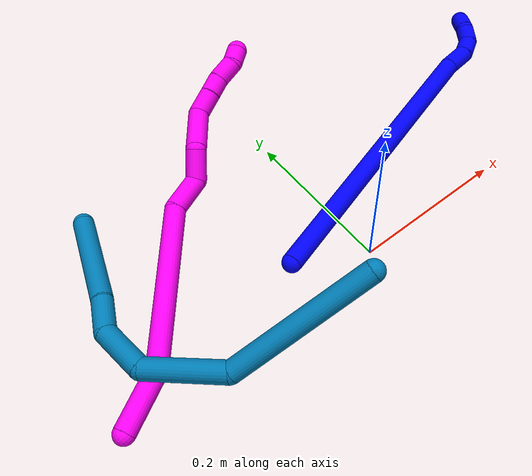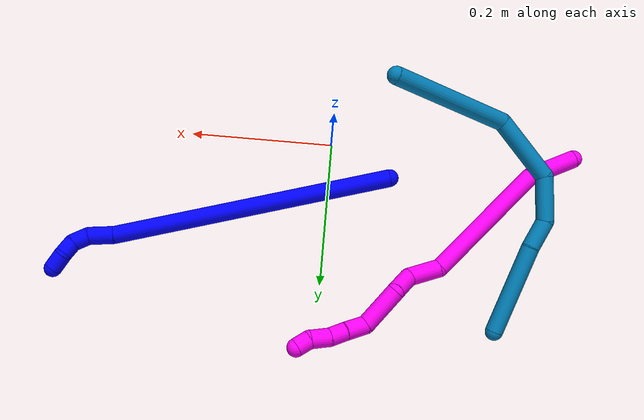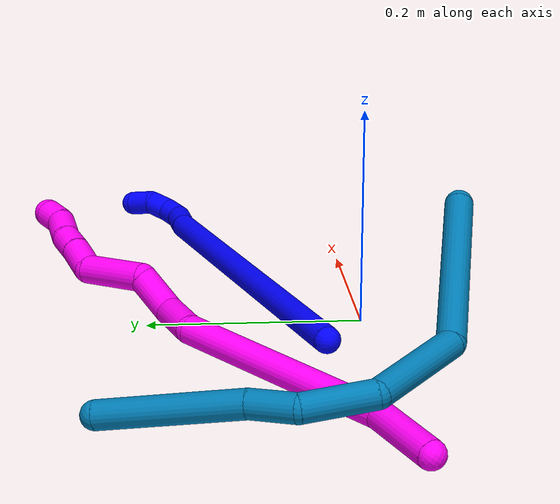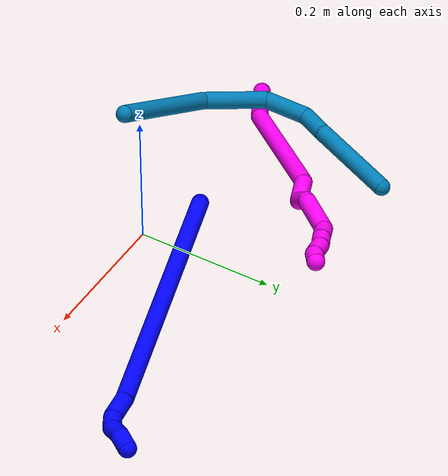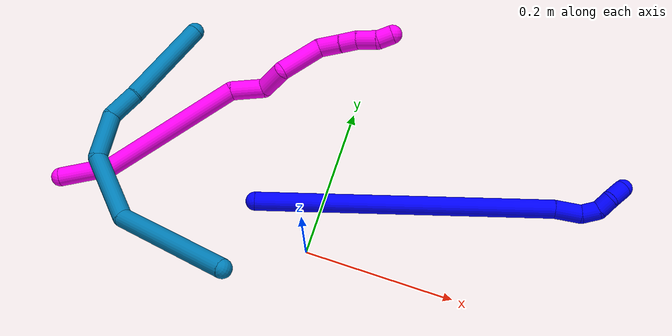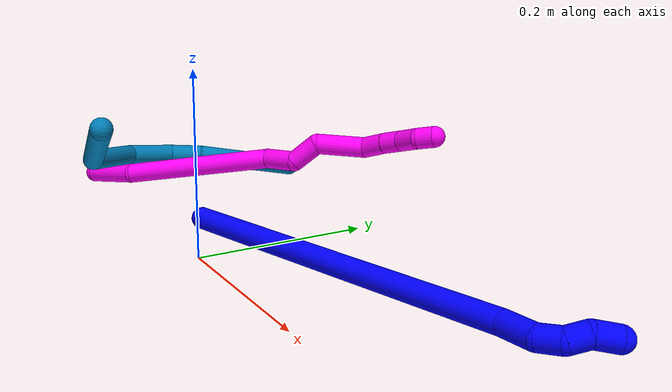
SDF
<sdf version="1.7">
 <world name="default">
  <model name="1">
   <static>0</static>
   <link name="1">
    <collision name="collision-cylinder-e_1_1_4">
     <pose>0.069106 0.020921 0.18423 -0.113077 0.356762 -0.020409</pose>
     <geometry><cylinder><radius>0.0125</radius><length>0.395748</length></cylinder></geometry>
     <surface>
      <friction><ode><mu>1.16</mu><mu2>1.16</mu2><slip1>0</slip1><slip2>0</slip2></ode></friction>
      <contact><ode><kp>1e+06</kp><kd>1</kd><max_vel>0</max_vel><min_depth>0.001</min_depth></ode></contact>
     </surface>
    </collision>
    <visual name="visual-cylinder-e_1_1_4">
     <pose>0.069106 0.020921 0.18423 -0.113077 0.356762 -0.020409</pose>
     <geometry><cylinder><radius>0.0125</radius><length>0.395748</length></cylinder></geometry>
     <material><ambient>0 0 1 1</ambient></material>
    </visual>
    <collision name="collision-cylinder-e_2_4_5">
     <pose>0.146995 0.044559 0.383687 -0.176541 0.516462 -0.046742</pose>
     <geometry><cylinder><radius>0.0125</radius><length>0.035574</length></cylinder></geometry>
     <surface>
      <friction><ode><mu>1.16</mu><mu2>1.16</mu2><slip1>0</slip1><slip2>0</slip2></ode></friction>
      <contact><ode><kp>1e+06</kp><kd>1</kd><max_vel>0</max_vel><min_depth>0.001</min_depth></ode></contact>
     </surface>
    </collision>
    <visual name="visual-cylinder-e_2_4_5">
     <pose>0.146995 0.044559 0.383687 -0.176541 0.516462 -0.046742</pose>
     <geometry><cylinder><radius>0.0125</radius><length>0.035574</length></cylinder></geometry>
     <material><ambient>0 0 1 1</ambient></material>
    </visual>
    <collision name="collision-cylinder-e_3_5_6">
     <pose>0.157932 0.046156 0.410403 0.097107 0.184378 0.008985</pose>
     <geometry><cylinder><radius>0.0125</radius><length>0.023487</length></cylinder></geometry>
     <surface>
      <friction><ode><mu>1.16</mu><mu2>1.16</mu2><slip1>0</slip1><slip2>0</slip2></ode></friction>
      <contact><ode><kp>1e+06</kp><kd>1</kd><max_vel>0</max_vel><min_depth>0.001</min_depth></ode></contact>
     </surface>
    </collision>
    <visual name="visual-cylinder-e_3_5_6">
     <pose>0.157932 0.046156 0.410403 0.097107 0.184378 0.008985</pose>
     <geometry><cylinder><radius>0.0125</radius><length>0.023487</length></cylinder></geometry>
     <material><ambient>0 0 1 1</ambient></material>
    </visual>
    <collision name="collision-cylinder-e_4_6_7">
     <pose>0.157686 0.040534 0.431244 0.448841 -0.227123 -0.052057</pose>
     <geometry><cylinder><radius>0.0125</radius><length>0.021304</length></cylinder></geometry>
     <surface>
      <friction><ode><mu>1.16</mu><mu2>1.16</mu2><slip1>0</slip1><slip2>0</slip2></ode></friction>
      <contact><ode><kp>1e+06</kp><kd>1</kd><max_vel>0</max_vel><min_depth>0.001</min_depth></ode></contact>
     </surface>
    </collision>
    <visual name="visual-cylinder-e_4_6_7">
     <pose>0.157686 0.040534 0.431244 0.448841 -0.227123 -0.052057</pose>
     <geometry><cylinder><radius>0.0125</radius><length>0.021304</length></cylinder></geometry>
     <material><ambient>0 0 1 1</ambient></material>
    </visual>
    <collision name="collision-cylinder-e_5_7_2">
     <pose>0.150966 0.036152 0.451728 -0.010966 -0.370244 0.002054</pose>
     <geometry><cylinder><radius>0.0125</radius><length>0.023887</length></cylinder></geometry>
     <surface>
      <friction><ode><mu>1.16</mu><mu2>1.16</mu2><slip1>0</slip1><slip2>0</slip2></ode></friction>
      <contact><ode><kp>1e+06</kp><kd>1</kd><max_vel>0</max_vel><min_depth>0.001</min_depth></ode></contact>
     </surface>
    </collision>
    <visual name="visual-cylinder-e_5_7_2">
     <pose>0.150966 0.036152 0.451728 -0.010966 -0.370244 0.002054</pose>
     <geometry><cylinder><radius>0.0125</radius><length>0.023887</length></cylinder></geometry>
     <material><ambient>0 0 1 1</ambient></material>
    </visual>
    <collision name="collision-sphere-2">
     <pose>0.146644 0.036274 0.462862 0 -0 0</pose>
     <geometry><sphere><radius>0.0125</radius></sphere></geometry>
     <surface>
      <friction><ode><mu>1.16</mu><mu2>1.16</mu2><slip1>0</slip1><slip2>0</slip2></ode></friction>
      <contact><ode><kp>1e+06</kp><kd>1</kd><max_vel>0</max_vel><min_depth>0.001</min_depth></ode></contact>
     </surface>
    </collision>
    <visual name="visual-sphere-2">
     <pose>0.146644 0.036274 0.462862 0 -0 0</pose>
     <geometry><sphere><radius>0.0125</radius></sphere></geometry>
     <material><ambient>0 0 1 1</ambient></material>
    </visual>
    <collision name="collision-sphere-7">
     <pose>0.155287 0.03603 0.440595 0 -0 0</pose>
     <geometry><sphere><radius>0.0125</radius></sphere></geometry>
     <surface>
      <friction><ode><mu>1.16</mu><mu2>1.16</mu2><slip1>0</slip1><slip2>0</slip2></ode></friction>
      <contact><ode><kp>1e+06</kp><kd>1</kd><max_vel>0</max_vel><min_depth>0.001</min_depth></ode></contact>
     </surface>
    </collision>
    <visual name="visual-sphere-7">
     <pose>0.155287 0.03603 0.440595 0 -0 0</pose>
     <geometry><sphere><radius>0.0125</radius></sphere></geometry>
     <material><ambient>0 0 1 1</ambient></material>
    </visual>
    <collision name="collision-sphere-6">
     <pose>0.160084 0.045037 0.421893 0 -0 0</pose>
     <geometry><sphere><radius>0.0125</radius></sphere></geometry>
     <surface>
      <friction><ode><mu>1.16</mu><mu2>1.16</mu2><slip1>0</slip1><slip2>0</slip2></ode></friction>
      <contact><ode><kp>1e+06</kp><kd>1</kd><max_vel>0</max_vel><min_depth>0.001</min_depth></ode></contact>
     </surface>
    </collision>
    <visual name="visual-sphere-6">
     <pose>0.160084 0.045037 0.421893 0 -0 0</pose>
     <geometry><sphere><radius>0.0125</radius></sphere></geometry>
     <material><ambient>0 0 1 1</ambient></material>
    </visual>
    <collision name="collision-sphere-5">
     <pose>0.155779 0.047276 0.398913 0 -0 0</pose>
     <geometry><sphere><radius>0.0125</radius></sphere></geometry>
     <surface>
      <friction><ode><mu>1.16</mu><mu2>1.16</mu2><slip1>0</slip1><slip2>0</slip2></ode></friction>
      <contact><ode><kp>1e+06</kp><kd>1</kd><max_vel>0</max_vel><min_depth>0.001</min_depth></ode></contact>
     </surface>
    </collision>
    <visual name="visual-sphere-5">
     <pose>0.155779 0.047276 0.398913 0 -0 0</pose>
     <geometry><sphere><radius>0.0125</radius></sphere></geometry>
     <material><ambient>0 0 1 1</ambient></material>
    </visual>
    <collision name="collision-sphere-1">
     <geometry><sphere><radius>0.0125</radius></sphere></geometry>
     <surface>
      <friction><ode><mu>1.16</mu><mu2>1.16</mu2><slip1>0</slip1><slip2>0</slip2></ode></friction>
      <contact><ode><kp>1e+06</kp><kd>1</kd><max_vel>0</max_vel><min_depth>0.001</min_depth></ode></contact>
     </surface>
    </collision>
    <visual name="visual-sphere-1">
     <geometry><sphere><radius>0.0125</radius></sphere></geometry>
     <material><ambient>0 0 1 1</ambient></material>
    </visual>
    <collision name="collision-sphere-4">
     <pose>0.138212 0.041843 0.36846 0 -0 0</pose>
     <geometry><sphere><radius>0.0125</radius></sphere></geometry>
     <surface>
      <friction><ode><mu>1.16</mu><mu2>1.16</mu2><slip1>0</slip1><slip2>0</slip2></ode></friction>
      <contact><ode><kp>1e+06</kp><kd>1</kd><max_vel>0</max_vel><min_depth>0.001</min_depth></ode></contact>
     </surface>
    </collision>
    <visual name="visual-sphere-4">
     <pose>0.138212 0.041843 0.36846 0 -0 0</pose>
     <geometry><sphere><radius>0.0125</radius></sphere></geometry>
     <material><ambient>0 0 1 1</ambient></material>
    </visual>
    <inertial>
     <pose>0.086505 0.025352 0.23235 0 -0 0</pose>
     <mass>0.5</mass>
     <inertia>
      <ixx>0.004775</ixx>
      <ixy>0</ixy>
      <ixz>0</ixz>
      <iyy>0.005065</iyy>
      <iyz>0</iyz>
      <izz>-0.002323</izz>
     </inertia>
    </inertial>
   </link>
   <pose>-0.085869 0.041513 0.012552 -1.59824 -0.356379 -0.895614</pose>
  </model>
  <model name="9">
   <static>0</static>
   <link name="9">
    <collision name="collision-cylinder-e_1_1_4">
     <pose>-0.055552 -0.065557 0.014374 1.35495 -0.691418 -0.564068</pose>
     <geometry><cylinder><radius>0.0125</radius><length>0.174244</length></cylinder></geometry>
     <surface>
      <friction><ode><mu>1.16</mu><mu2>1.16</mu2><slip1>0</slip1><slip2>0</slip2></ode></friction>
      <contact><ode><kp>1e+06</kp><kd>1</kd><max_vel>0</max_vel><min_depth>0.001</min_depth></ode></contact>
     </surface>
    </collision>
    <visual name="visual-cylinder-e_1_1_4">
     <pose>-0.055552 -0.065557 0.014374 1.35495 -0.691418 -0.564068</pose>
     <geometry><cylinder><radius>0.0125</radius><length>0.174244</length></cylinder></geometry>
     <material><ambient>0 0.490196 0.709804 1</ambient></material>
    </visual>
    <collision name="collision-cylinder-e_2_4_5">
     <pose>-0.156058 -0.141838 0.040391 0.744386 -1.23222 -0.539366</pose>
     <geometry><cylinder><radius>0.0125</radius><length>0.095321</length></cylinder></geometry>
     <surface>
      <friction><ode><mu>1.16</mu><mu2>1.16</mu2><slip1>0</slip1><slip2>0</slip2></ode></friction>
      <contact><ode><kp>1e+06</kp><kd>1</kd><max_vel>0</max_vel><min_depth>0.001</min_depth></ode></contact>
     </surface>
    </collision>
    <visual name="visual-cylinder-e_2_4_5">
     <pose>-0.156058 -0.141838 0.040391 0.744386 -1.23222 -0.539366</pose>
     <geometry><cylinder><radius>0.0125</radius><length>0.095321</length></cylinder></geometry>
     <material><ambient>0 0.490196 0.709804 1</ambient></material>
    </visual>
    <collision name="collision-cylinder-e_3_5_6">
     <pose>-0.230195 -0.141603 0.050168 -1.73944 -1.20679 1.3693</pose>
     <geometry><cylinder><radius>0.0125</radius><length>0.062456</length></cylinder></geometry>
     <surface>
      <friction><ode><mu>1.16</mu><mu2>1.16</mu2><slip1>0</slip1><slip2>0</slip2></ode></friction>
      <contact><ode><kp>1e+06</kp><kd>1</kd><max_vel>0</max_vel><min_depth>0.001</min_depth></ode></contact>
     </surface>
    </collision>
    <visual name="visual-cylinder-e_3_5_6">
     <pose>-0.230195 -0.141603 0.050168 -1.73944 -1.20679 1.3693</pose>
     <geometry><cylinder><radius>0.0125</radius><length>0.062456</length></cylinder></geometry>
     <material><ambient>0 0.490196 0.709804 1</ambient></material>
    </visual>
    <collision name="collision-cylinder-e_4_6_7">
     <pose>-0.272421 -0.115761 0.042233 -1.95796 -0.6818 0.971209</pose>
     <geometry><cylinder><radius>0.0125</radius><length>0.041399</length></cylinder></geometry>
     <surface>
      <friction><ode><mu>1.16</mu><mu2>1.16</mu2><slip1>0</slip1><slip2>0</slip2></ode></friction>
      <contact><ode><kp>1e+06</kp><kd>1</kd><max_vel>0</max_vel><min_depth>0.001</min_depth></ode></contact>
     </surface>
    </collision>
    <visual name="visual-cylinder-e_4_6_7">
     <pose>-0.272421 -0.115761 0.042233 -1.95796 -0.6818 0.971209</pose>
     <geometry><cylinder><radius>0.0125</radius><length>0.041399</length></cylinder></geometry>
     <material><ambient>0 0.490196 0.709804 1</ambient></material>
    </visual>
    <collision name="collision-cylinder-e_5_7_2">
     <pose>-0.332158 -0.063548 0.015382 -2.07879 -0.829718 1.28607</pose>
     <geometry><cylinder><radius>0.0125</radius><length>0.12658</length></cylinder></geometry>
     <surface>
      <friction><ode><mu>1.16</mu><mu2>1.16</mu2><slip1>0</slip1><slip2>0</slip2></ode></friction>
      <contact><ode><kp>1e+06</kp><kd>1</kd><max_vel>0</max_vel><min_depth>0.001</min_depth></ode></contact>
     </surface>
    </collision>
    <visual name="visual-cylinder-e_5_7_2">
     <pose>-0.332158 -0.063548 0.015382 -2.07879 -0.829718 1.28607</pose>
     <geometry><cylinder><radius>0.0125</radius><length>0.12658</length></cylinder></geometry>
     <material><ambient>0 0.490196 0.709804 1</ambient></material>
    </visual>
    <collision name="collision-sphere-2">
     <pose>-0.378849 -0.026217 -0.005401 0 -0 0</pose>
     <geometry><sphere><radius>0.0125</radius></sphere></geometry>
     <surface>
      <friction><ode><mu>1.16</mu><mu2>1.16</mu2><slip1>0</slip1><slip2>0</slip2></ode></friction>
      <contact><ode><kp>1e+06</kp><kd>1</kd><max_vel>0</max_vel><min_depth>0.001</min_depth></ode></contact>
     </surface>
    </collision>
    <visual name="visual-sphere-2">
     <pose>-0.378849 -0.026217 -0.005401 0 -0 0</pose>
     <geometry><sphere><radius>0.0125</radius></sphere></geometry>
     <material><ambient>0 0.490196 0.709804 1</ambient></material>
    </visual>
    <collision name="collision-sphere-7">
     <pose>-0.285466 -0.100878 0.036165 0 -0 0</pose>
     <geometry><sphere><radius>0.0125</radius></sphere></geometry>
     <surface>
      <friction><ode><mu>1.16</mu><mu2>1.16</mu2><slip1>0</slip1><slip2>0</slip2></ode></friction>
      <contact><ode><kp>1e+06</kp><kd>1</kd><max_vel>0</max_vel><min_depth>0.001</min_depth></ode></contact>
     </surface>
    </collision>
    <visual name="visual-sphere-7">
     <pose>-0.285466 -0.100878 0.036165 0 -0 0</pose>
     <geometry><sphere><radius>0.0125</radius></sphere></geometry>
     <material><ambient>0 0.490196 0.709804 1</ambient></material>
    </visual>
    <collision name="collision-sphere-6">
     <pose>-0.259376 -0.130643 0.048302 0 -0 0</pose>
     <geometry><sphere><radius>0.0125</radius></sphere></geometry>
     <surface>
      <friction><ode><mu>1.16</mu><mu2>1.16</mu2><slip1>0</slip1><slip2>0</slip2></ode></friction>
      <contact><ode><kp>1e+06</kp><kd>1</kd><max_vel>0</max_vel><min_depth>0.001</min_depth></ode></contact>
     </surface>
    </collision>
    <visual name="visual-sphere-6">
     <pose>-0.259376 -0.130643 0.048302 0 -0 0</pose>
     <geometry><sphere><radius>0.0125</radius></sphere></geometry>
     <material><ambient>0 0.490196 0.709804 1</ambient></material>
    </visual>
    <collision name="collision-sphere-5">
     <pose>-0.201013 -0.152563 0.052034 0 -0 0</pose>
     <geometry><sphere><radius>0.0125</radius></sphere></geometry>
     <surface>
      <friction><ode><mu>1.16</mu><mu2>1.16</mu2><slip1>0</slip1><slip2>0</slip2></ode></friction>
      <contact><ode><kp>1e+06</kp><kd>1</kd><max_vel>0</max_vel><min_depth>0.001</min_depth></ode></contact>
     </surface>
    </collision>
    <visual name="visual-sphere-5">
     <pose>-0.201013 -0.152563 0.052034 0 -0 0</pose>
     <geometry><sphere><radius>0.0125</radius></sphere></geometry>
     <material><ambient>0 0.490196 0.709804 1</ambient></material>
    </visual>
    <collision name="collision-sphere-1">
     <geometry><sphere><radius>0.0125</radius></sphere></geometry>
     <surface>
      <friction><ode><mu>1.16</mu><mu2>1.16</mu2><slip1>0</slip1><slip2>0</slip2></ode></friction>
      <contact><ode><kp>1e+06</kp><kd>1</kd><max_vel>0</max_vel><min_depth>0.001</min_depth></ode></contact>
     </surface>
    </collision>
    <visual name="visual-sphere-1">
     <geometry><sphere><radius>0.0125</radius></sphere></geometry>
     <material><ambient>0 0.490196 0.709804 1</ambient></material>
    </visual>
    <collision name="collision-sphere-4">
     <pose>-0.111103 -0.131113 0.028748 0 -0 0</pose>
     <geometry><sphere><radius>0.0125</radius></sphere></geometry>
     <surface>
      <friction><ode><mu>1.16</mu><mu2>1.16</mu2><slip1>0</slip1><slip2>0</slip2></ode></friction>
      <contact><ode><kp>1e+06</kp><kd>1</kd><max_vel>0</max_vel><min_depth>0.001</min_depth></ode></contact>
     </surface>
    </collision>
    <visual name="visual-sphere-4">
     <pose>-0.111103 -0.131113 0.028748 0 -0 0</pose>
     <geometry><sphere><radius>0.0125</radius></sphere></geometry>
     <material><ambient>0 0.490196 0.709804 1</ambient></material>
    </visual>
    <inertial>
     <pose>-0.184509 -0.093246 0.026367 0 -0 0</pose>
     <mass>0.5</mass>
     <inertia>
      <ixx>0.00025</ixx>
      <ixy>0</ixy>
      <ixz>0</ixz>
      <iyy>0.000335</iyy>
      <iyz>0</iyz>
      <izz>0.000749</izz>
     </inertia>
    </inertial>
   </link>
   <pose>-0.076433 -0.074067 0.13208 0.554177 -0.275073 -1.13315</pose>
  </model>
  <model name="10">
   <static>0</static>
   <link name="10">
    <collision name="collision-cylinder-e_1_1_4">
     <pose>0.016964 0.028203 0.01046 -1.21564 0.513503 -0.361313</pose>
     <geometry><cylinder><radius>0.0125</radius><length>0.069069</length></cylinder></geometry>
     <surface>
      <friction><ode><mu>1.16</mu><mu2>1.16</mu2><slip1>0</slip1><slip2>0</slip2></ode></friction>
      <contact><ode><kp>1e+06</kp><kd>1</kd><max_vel>0</max_vel><min_depth>0.001</min_depth></ode></contact>
     </surface>
    </collision>
    <visual name="visual-cylinder-e_1_1_4">
     <pose>0.016964 0.028203 0.01046 -1.21564 0.513503 -0.361313</pose>
     <geometry><cylinder><radius>0.0125</radius><length>0.069069</length></cylinder></geometry>
     <material><ambient>1 0 0.964706 1</ambient></material>
    </visual>
    <collision name="collision-cylinder-e_2_4_5">
     <pose>0.057812 0.129272 0.07691 -0.915625 0.254282 -0.125805</pose>
     <geometry><cylinder><radius>0.0125</radius><length>0.189892</length></cylinder></geometry>
     <surface>
      <friction><ode><mu>1.16</mu><mu2>1.16</mu2><slip1>0</slip1><slip2>0</slip2></ode></friction>
      <contact><ode><kp>1e+06</kp><kd>1</kd><max_vel>0</max_vel><min_depth>0.001</min_depth></ode></contact>
     </surface>
    </collision>
    <visual name="visual-cylinder-e_2_4_5">
     <pose>0.057812 0.129272 0.07691 -0.915625 0.254282 -0.125805</pose>
     <geometry><cylinder><radius>0.0125</radius><length>0.189892</length></cylinder></geometry>
     <material><ambient>1 0 0.964706 1</ambient></material>
    </visual>
    <collision name="collision-cylinder-e_3_5_6">
     <pose>0.093151 0.220468 0.137106 -1.34525 0.54709 -0.439754</pose>
     <geometry><cylinder><radius>0.0125</radius><length>0.044042</length></cylinder></geometry>
     <surface>
      <friction><ode><mu>1.16</mu><mu2>1.16</mu2><slip1>0</slip1><slip2>0</slip2></ode></friction>
      <contact><ode><kp>1e+06</kp><kd>1</kd><max_vel>0</max_vel><min_depth>0.001</min_depth></ode></contact>
     </surface>
    </collision>
    <visual name="visual-cylinder-e_3_5_6">
     <pose>0.093151 0.220468 0.137106 -1.34525 0.54709 -0.439754</pose>
     <geometry><cylinder><radius>0.0125</radius><length>0.044042</length></cylinder></geometry>
     <material><ambient>1 0 0.964706 1</ambient></material>
    </visual>
    <collision name="collision-cylinder-e_4_6_7">
     <pose>0.114467 0.245394 0.155642 -0.431371 0.558642 -0.125516</pose>
     <geometry><cylinder><radius>0.0125</radius><length>0.037207</length></cylinder></geometry>
     <surface>
      <friction><ode><mu>1.16</mu><mu2>1.16</mu2><slip1>0</slip1><slip2>0</slip2></ode></friction>
      <contact><ode><kp>1e+06</kp><kd>1</kd><max_vel>0</max_vel><min_depth>0.001</min_depth></ode></contact>
     </surface>
    </collision>
    <visual name="visual-cylinder-e_4_6_7">
     <pose>0.114467 0.245394 0.155642 -0.431371 0.558642 -0.125516</pose>
     <geometry><cylinder><radius>0.0125</radius><length>0.037207</length></cylinder></geometry>
     <material><ambient>1 0 0.964706 1</ambient></material>
    </visual>
    <collision name="collision-cylinder-e_5_7_8">
     <pose>0.126513 0.27727 0.185196 -1.02874 0.073933 -0.041793</pose>
     <geometry><cylinder><radius>0.0125</radius><length>0.059182</length></cylinder></geometry>
     <surface>
      <friction><ode><mu>1.16</mu><mu2>1.16</mu2><slip1>0</slip1><slip2>0</slip2></ode></friction>
      <contact><ode><kp>1e+06</kp><kd>1</kd><max_vel>0</max_vel><min_depth>0.001</min_depth></ode></contact>
     </surface>
    </collision>
    <visual name="visual-cylinder-e_5_7_8">
     <pose>0.126513 0.27727 0.185196 -1.02874 0.073933 -0.041793</pose>
     <geometry><cylinder><radius>0.0125</radius><length>0.059182</length></cylinder></geometry>
     <material><ambient>1 0 0.964706 1</ambient></material>
    </visual>
    <collision name="collision-cylinder-e_6_8_9">
     <pose>0.138427 0.312761 0.205522 -1.10746 0.705796 -0.447785</pose>
     <geometry><cylinder><radius>0.0125</radius><length>0.029994</length></cylinder></geometry>
     <surface>
      <friction><ode><mu>1.16</mu><mu2>1.16</mu2><slip1>0</slip1><slip2>0</slip2></ode></friction>
      <contact><ode><kp>1e+06</kp><kd>1</kd><max_vel>0</max_vel><min_depth>0.001</min_depth></ode></contact>
     </surface>
    </collision>
    <visual name="visual-cylinder-e_6_8_9">
     <pose>0.138427 0.312761 0.205522 -1.10746 0.705796 -0.447785</pose>
     <geometry><cylinder><radius>0.0125</radius><length>0.029994</length></cylinder></geometry>
     <material><ambient>1 0 0.964706 1</ambient></material>
    </visual>
    <collision name="collision-cylinder-e_7_9_10">
     <pose>0.154866 0.331351 0.214497 -1.13783 0.628621 -0.409907</pose>
     <geometry><cylinder><radius>0.0125</radius><length>0.022828</length></cylinder></geometry>
     <surface>
      <friction><ode><mu>1.16</mu><mu2>1.16</mu2><slip1>0</slip1><slip2>0</slip2></ode></friction>
      <contact><ode><kp>1e+06</kp><kd>1</kd><max_vel>0</max_vel><min_depth>0.001</min_depth></ode></contact>
     </surface>
    </collision>
    <visual name="visual-cylinder-e_7_9_10">
     <pose>0.154866 0.331351 0.214497 -1.13783 0.628621 -0.409907</pose>
     <geometry><cylinder><radius>0.0125</radius><length>0.022828</length></cylinder></geometry>
     <material><ambient>1 0 0.964706 1</ambient></material>
    </visual>
    <collision name="collision-cylinder-e_8_10_11">
     <pose>0.171626 0.348897 0.220638 -1.32826 0.816531 -0.652949</pose>
     <geometry><cylinder><radius>0.0125</radius><length>0.027576</length></cylinder></geometry>
     <surface>
      <friction><ode><mu>1.16</mu><mu2>1.16</mu2><slip1>0</slip1><slip2>0</slip2></ode></friction>
      <contact><ode><kp>1e+06</kp><kd>1</kd><max_vel>0</max_vel><min_depth>0.001</min_depth></ode></contact>
     </surface>
    </collision>
    <visual name="visual-cylinder-e_8_10_11">
     <pose>0.171626 0.348897 0.220638 -1.32826 0.816531 -0.652949</pose>
     <geometry><cylinder><radius>0.0125</radius><length>0.027576</length></cylinder></geometry>
     <material><ambient>1 0 0.964706 1</ambient></material>
    </visual>
    <collision name="collision-cylinder-e_9_11_2">
     <pose>0.1861 0.365914 0.227475 -1.0437 0.453314 -0.263685</pose>
     <geometry><cylinder><radius>0.0125</radius><length>0.020211</length></cylinder></geometry>
     <surface>
      <friction><ode><mu>1.16</mu><mu2>1.16</mu2><slip1>0</slip1><slip2>0</slip2></ode></friction>
      <contact><ode><kp>1e+06</kp><kd>1</kd><max_vel>0</max_vel><min_depth>0.001</min_depth></ode></contact>
     </surface>
    </collision>
    <visual name="visual-cylinder-e_9_11_2">
     <pose>0.1861 0.365914 0.227475 -1.0437 0.453314 -0.263685</pose>
     <geometry><cylinder><radius>0.0125</radius><length>0.020211</length></cylinder></geometry>
     <material><ambient>1 0 0.964706 1</ambient></material>
    </visual>
    <collision name="collision-sphere-2">
     <pose>0.190526 0.373766 0.232045 0 -0 0</pose>
     <geometry><sphere><radius>0.0125</radius></sphere></geometry>
     <surface>
      <friction><ode><mu>1.16</mu><mu2>1.16</mu2><slip1>0</slip1><slip2>0</slip2></ode></friction>
      <contact><ode><kp>1e+06</kp><kd>1</kd><max_vel>0</max_vel><min_depth>0.001</min_depth></ode></contact>
     </surface>
    </collision>
    <visual name="visual-sphere-2">
     <pose>0.190526 0.373766 0.232045 0 -0 0</pose>
     <geometry><sphere><radius>0.0125</radius></sphere></geometry>
     <material><ambient>1 0 0.964706 1</ambient></material>
    </visual>
    <collision name="collision-sphere-11">
     <pose>0.181675 0.358062 0.222905 0 -0 0</pose>
     <geometry><sphere><radius>0.0125</radius></sphere></geometry>
     <surface>
      <friction><ode><mu>1.16</mu><mu2>1.16</mu2><slip1>0</slip1><slip2>0</slip2></ode></friction>
      <contact><ode><kp>1e+06</kp><kd>1</kd><max_vel>0</max_vel><min_depth>0.001</min_depth></ode></contact>
     </surface>
    </collision>
    <visual name="visual-sphere-11">
     <pose>0.181675 0.358062 0.222905 0 -0 0</pose>
     <geometry><sphere><radius>0.0125</radius></sphere></geometry>
     <material><ambient>1 0 0.964706 1</ambient></material>
    </visual>
    <collision name="collision-sphere-10">
     <pose>0.161578 0.339732 0.21837 0 -0 0</pose>
     <geometry><sphere><radius>0.0125</radius></sphere></geometry>
     <surface>
      <friction><ode><mu>1.16</mu><mu2>1.16</mu2><slip1>0</slip1><slip2>0</slip2></ode></friction>
      <contact><ode><kp>1e+06</kp><kd>1</kd><max_vel>0</max_vel><min_depth>0.001</min_depth></ode></contact>
     </surface>
    </collision>
    <visual name="visual-sphere-10">
     <pose>0.161578 0.339732 0.21837 0 -0 0</pose>
     <geometry><sphere><radius>0.0125</radius></sphere></geometry>
     <material><ambient>1 0 0.964706 1</ambient></material>
    </visual>
    <collision name="collision-sphere-9">
     <pose>0.148154 0.322971 0.210623 0 -0 0</pose>
     <geometry><sphere><radius>0.0125</radius></sphere></geometry>
     <surface>
      <friction><ode><mu>1.16</mu><mu2>1.16</mu2><slip1>0</slip1><slip2>0</slip2></ode></friction>
      <contact><ode><kp>1e+06</kp><kd>1</kd><max_vel>0</max_vel><min_depth>0.001</min_depth></ode></contact>
     </surface>
    </collision>
    <visual name="visual-sphere-9">
     <pose>0.148154 0.322971 0.210623 0 -0 0</pose>
     <geometry><sphere><radius>0.0125</radius></sphere></geometry>
     <material><ambient>1 0 0.964706 1</ambient></material>
    </visual>
    <collision name="collision-sphere-4">
     <pose>0.033929 0.056406 0.02092 0 -0 0</pose>
     <geometry><sphere><radius>0.0125</radius></sphere></geometry>
     <surface>
      <friction><ode><mu>1.16</mu><mu2>1.16</mu2><slip1>0</slip1><slip2>0</slip2></ode></friction>
      <contact><ode><kp>1e+06</kp><kd>1</kd><max_vel>0</max_vel><min_depth>0.001</min_depth></ode></contact>
     </surface>
    </collision>
    <visual name="visual-sphere-4">
     <pose>0.033929 0.056406 0.02092 0 -0 0</pose>
     <geometry><sphere><radius>0.0125</radius></sphere></geometry>
     <material><ambient>1 0 0.964706 1</ambient></material>
    </visual>
    <collision name="collision-sphere-1">
     <geometry><sphere><radius>0.0125</radius></sphere></geometry>
     <surface>
      <friction><ode><mu>1.16</mu><mu2>1.16</mu2><slip1>0</slip1><slip2>0</slip2></ode></friction>
      <contact><ode><kp>1e+06</kp><kd>1</kd><max_vel>0</max_vel><min_depth>0.001</min_depth></ode></contact>
     </surface>
    </collision>
    <visual name="visual-sphere-1">
     <geometry><sphere><radius>0.0125</radius></sphere></geometry>
     <material><ambient>1 0 0.964706 1</ambient></material>
    </visual>
    <collision name="collision-sphere-8">
     <pose>0.128699 0.30255 0.200421 0 -0 0</pose>
     <geometry><sphere><radius>0.0125</radius></sphere></geometry>
     <surface>
      <friction><ode><mu>1.16</mu><mu2>1.16</mu2><slip1>0</slip1><slip2>0</slip2></ode></friction>
      <contact><ode><kp>1e+06</kp><kd>1</kd><max_vel>0</max_vel><min_depth>0.001</min_depth></ode></contact>
     </surface>
    </collision>
    <visual name="visual-sphere-8">
     <pose>0.128699 0.30255 0.200421 0 -0 0</pose>
     <geometry><sphere><radius>0.0125</radius></sphere></geometry>
     <material><ambient>1 0 0.964706 1</ambient></material>
    </visual>
    <collision name="collision-sphere-5">
     <pose>0.081696 0.202138 0.1329 0 -0 0</pose>
     <geometry><sphere><radius>0.0125</radius></sphere></geometry>
     <surface>
      <friction><ode><mu>1.16</mu><mu2>1.16</mu2><slip1>0</slip1><slip2>0</slip2></ode></friction>
      <contact><ode><kp>1e+06</kp><kd>1</kd><max_vel>0</max_vel><min_depth>0.001</min_depth></ode></contact>
     </surface>
    </collision>
    <visual name="visual-sphere-5">
     <pose>0.081696 0.202138 0.1329 0 -0 0</pose>
     <geometry><sphere><radius>0.0125</radius></sphere></geometry>
     <material><ambient>1 0 0.964706 1</ambient></material>
    </visual>
    <collision name="collision-sphere-6">
     <pose>0.104607 0.238798 0.141312 0 -0 0</pose>
     <geometry><sphere><radius>0.0125</radius></sphere></geometry>
     <surface>
      <friction><ode><mu>1.16</mu><mu2>1.16</mu2><slip1>0</slip1><slip2>0</slip2></ode></friction>
      <contact><ode><kp>1e+06</kp><kd>1</kd><max_vel>0</max_vel><min_depth>0.001</min_depth></ode></contact>
     </surface>
    </collision>
    <visual name="visual-sphere-6">
     <pose>0.104607 0.238798 0.141312 0 -0 0</pose>
     <geometry><sphere><radius>0.0125</radius></sphere></geometry>
     <material><ambient>1 0 0.964706 1</ambient></material>
    </visual>
    <collision name="collision-sphere-7">
     <pose>0.124328 0.25199 0.169972 0 -0 0</pose>
     <geometry><sphere><radius>0.0125</radius></sphere></geometry>
     <surface>
      <friction><ode><mu>1.16</mu><mu2>1.16</mu2><slip1>0</slip1><slip2>0</slip2></ode></friction>
      <contact><ode><kp>1e+06</kp><kd>1</kd><max_vel>0</max_vel><min_depth>0.001</min_depth></ode></contact>
     </surface>
    </collision>
    <visual name="visual-sphere-7">
     <pose>0.124328 0.25199 0.169972 0 -0 0</pose>
     <geometry><sphere><radius>0.0125</radius></sphere></geometry>
     <material><ambient>1 0 0.964706 1</ambient></material>
    </visual>
    <inertial>
     <pose>0.08836 0.191414 0.119719 0 -0 0</pose>
     <mass>0.5</mass>
     <inertia>
      <ixx>0.000545</ixx>
      <ixy>0</ixy>
      <ixz>0</ixz>
      <iyy>0.000346</iyy>
      <iyz>0</iyz>
      <izz>-0.000658</izz>
     </inertia>
    </inertial>
   </link>
   <pose>-0.342841 -0.008396 0.011494 -0.666347 -0.738456 -0.512325</pose>
  </model>
 </world>
</sdf>
